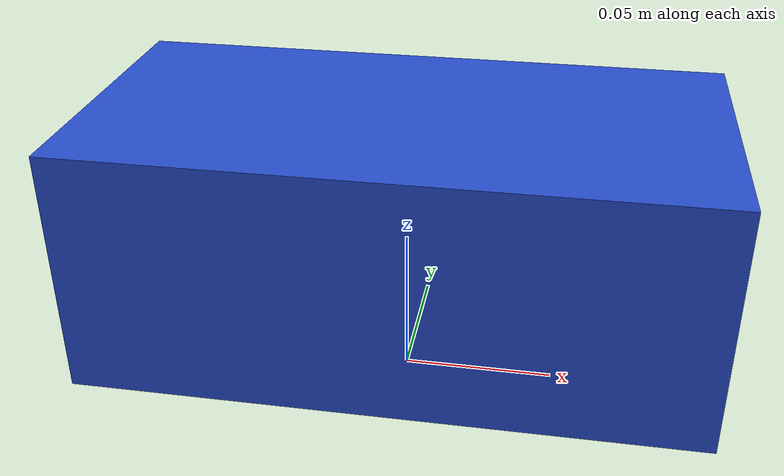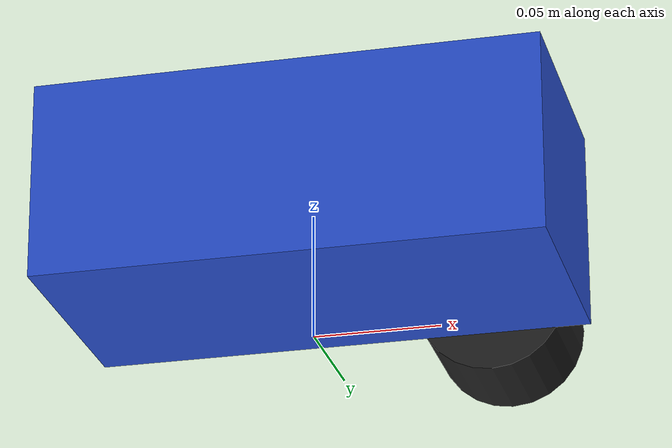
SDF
<?xml version="1.0" ?>
<sdf version="1.6">
  <model name="jetank_robot">
    <static>false</static>
    <link name="main_chassis">
      <pose>0 0 0.055 0 0 0</pose>
      <inertial>
        <mass>10.0</mass>
        <inertia>
          <ixx>0.1</ixx>
          <iyy>0.1</iyy>
          <izz>0.1</izz>
        </inertia>
      </inertial>
      <collision name="chassis_collision">
        <geometry>
          <box>
            <size>0.2 0.1 0.08</size>
          </box>
        </geometry>
        <surface>
          <friction>
            <ode>
              <mu>0.5</mu>
              <mu2>0.5</mu2>
            </ode>
          </friction>
        </surface>
      </collision>
      <visual name="chassis_visual">
        <geometry>
          <box>
            <size>0.2 0.1 0.08</size>
          </box>
        </geometry>
        <material>
          <script>
            <uri>file://media/materials/scripts/gazebo.material</uri>
            <name>Gazebo/Blue</name>
          </script>
        </material>
      </visual>
    </link>

    <link name="left_wheel_front">
      <pose>0.06 0.0725 0.03 0 1.5707 1.5707</pose>
      <inertial>
        <mass>1.0</mass>
        <inertia>
          <ixx>0.01</ixx>
          <iyy>0.01</iyy>
          <izz>0.01</izz>
        </inertia>
      </inertial>
      <collision name="collision">
        <geometry>
          <cylinder>
            <radius>0.03</radius>
            <length>0.045</length>
          </cylinder>
        </geometry>
      </collision>
      <visual name="visual">
        <geometry>
          <cylinder>
            <radius>0.03</radius>
            <length>0.045</length>
          </cylinder>
        </geometry>
        <material>
          <script>
            <uri>file://media/materials/scripts/gazebo.material</uri>
            <name>Gazebo/Black</name>
          </script>
        </material>
      </visual>
    </link>
    <joint name="left_wheel_front_joint" type="revolute">
      <parent>main_chassis</parent>
      <child>left_wheel_front</child>
      <axis>
        <xyz>0 1 0</xyz>
        <limit>
          <lower>-1.0</lower>
          <upper>1.0</upper>
        </limit>
      </axis>
    </joint>
  </model>
</sdf>
